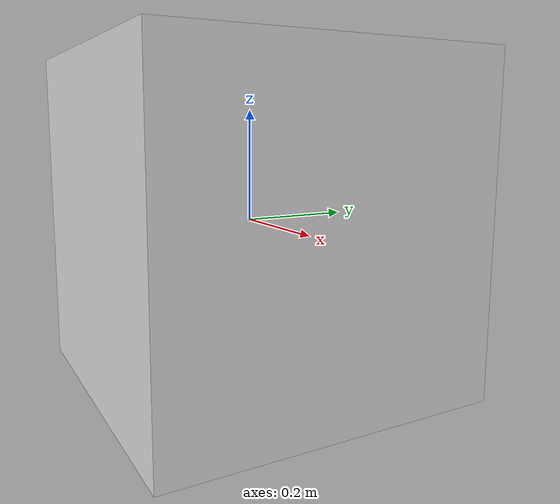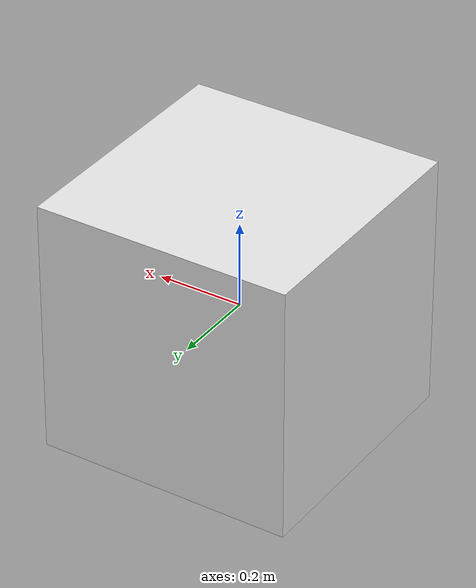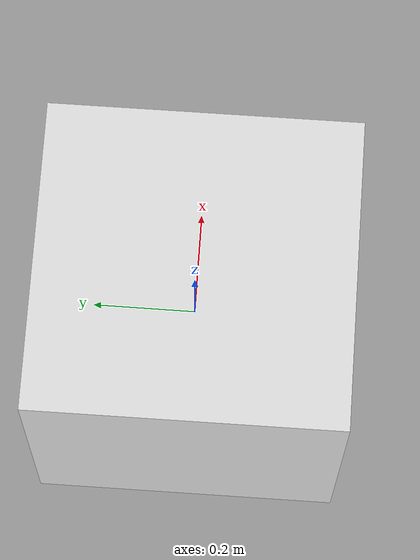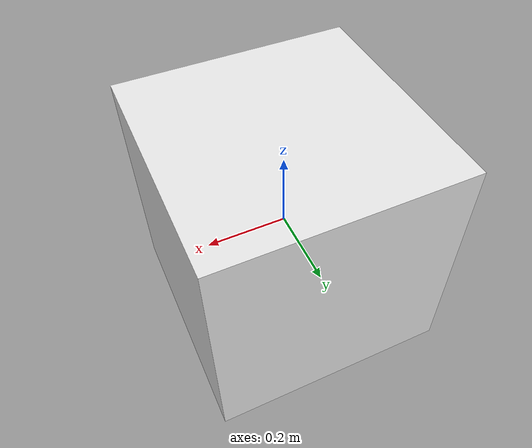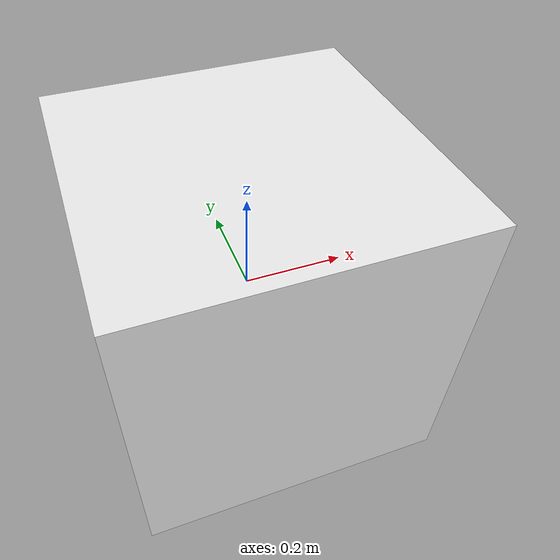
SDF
<?xml version="1.0"?>
<sdf version="1.7">

  <!-- world->ghost_body_y->ghost_body_z_sphere-->
  <model name="simple_cuboid0.6m">
    <!-- The model for a solid box of uniform density. -->
    <link name="box">
      <inertial>
        <mass>1.0</mass>
        <inertia>
          <ixx>0.166666666666667</ixx>
          <ixy>0</ixy>
          <ixz>0</ixz>
          <iyy>0.166666666666667</iyy>
          <iyz>0</iyz>
          <izz>0.166666666666667</izz>
        </inertia>
      </inertial>

      <visual name="box_visual">
        <geometry>
          <box>
            <size>0.599 0.599 0.599</size>
          </box>
        </geometry>
        <material>
          <diffuse>0.9 0.9 0.9 0.9</diffuse>
        </material>
      </visual>

      <collision name="collision">
        <geometry>
          <box>
            <size>0.599 0.599 0.599</size>
          </box>
        </geometry>
        <surface>
          <friction>
            <ode>
              <mu>0.1</mu>
              <mu2>0.1</mu2>
            </ode>
          </friction>
        </surface>
      </collision>

      <collision name="minus_x_lower_left_corner">
        <pose> -0.3 -0.3 -0.3 0 0 0</pose>
        <geometry>
          <sphere>
            <radius>1e-7</radius>
          </sphere>
        </geometry>
      </collision>

      <collision name="minus_x_lower_right_corner">
        <pose> -0.3 0.3 -0.3 0 0 0 </pose>
        <geometry>
          <sphere>
            <radius>1e-7</radius>
          </sphere>
        </geometry>
      </collision>

      <collision name="plus_x_lower_left_corner">
        <pose> 0.3 -0.3 -0.3 0 0 0</pose>
        <geometry>
          <sphere>
            <radius>1e-7</radius>
          </sphere>
        </geometry>
      </collision>

      <collision name="plus_x_lower_right_corner">
        <pose> 0.3 0.3 -0.3 0 0 0 </pose>
        <geometry>
          <sphere>
            <radius>1e-7</radius>
          </sphere>
        </geometry>
      </collision>

      <collision name="minus_x_upper_left_corner">
        <pose> -0.3 -0.3 0.3 0 0 0</pose>
        <geometry>
          <sphere>
            <radius>1e-7</radius>
          </sphere>
        </geometry>
      </collision>

      <collision name="minus_x_upper_right_corner">
        <pose> -0.3 0.3 0.3 0 0 0 </pose>
        <geometry>
          <sphere>
            <radius>1e-7</radius>
          </sphere>
        </geometry>
      </collision>

      <collision name="plus_x_upper_left_corner">
        <pose> 0.3 -0.3 0.3 0 0 0</pose>
        <geometry>
          <sphere>
            <radius>1e-7</radius>
          </sphere>
        </geometry>
      </collision>

      <collision name="plus_x_upper_right_corner">
        <pose> 0.3 0.3 0.3 0 0 0 </pose>
        <geometry>
          <sphere>
            <radius>1e-7</radius>
          </sphere>
        </geometry>
      </collision>

    </link>
  </model>
</sdf>
